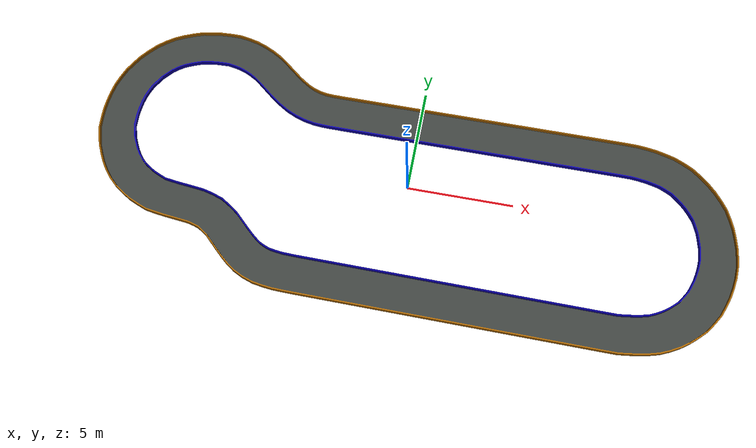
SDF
<?xml version="1.0" ?>
<sdf version="1.5">
  <model name="Race Track">
    <link name="link">
      <inertial>
        <pose>0 0 0.4 0 0 0</pose>
        <mass>500</mass>
        <inertia>
          <ixx>51.2096</ixx>
          <iyy>51.2096</iyy>
          <izz>25</izz>
          <ixy>0</ixy>
          <ixz>0</ixz>
        </inertia>
      </inertial>
      <collision name="collision">
        <geometry>
          <mesh>
            <uri>model://construction_barrel/meshes/track.dae</uri>
          </mesh>
        </geometry>
      </collision>
      <visual name="visual">
        <geometry>
          <mesh>
            <uri>model://construction_barrel/meshes/track.dae</uri>
          </mesh>
        </geometry>
      </visual>
    </link>
  </model>
</sdf>
